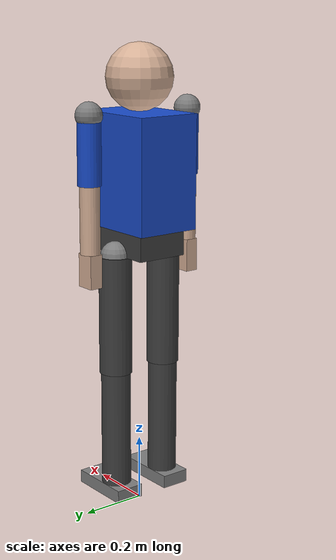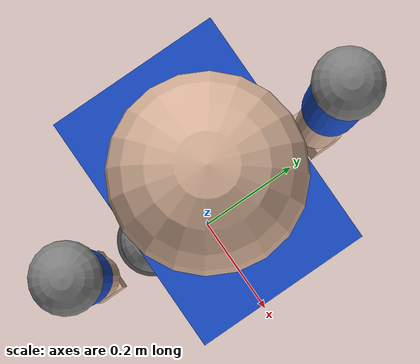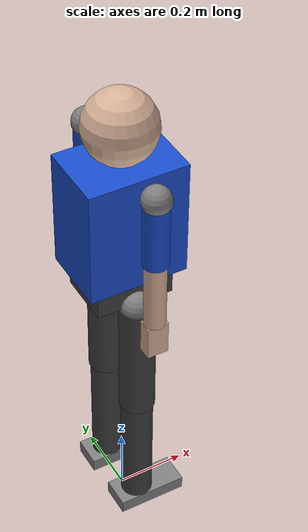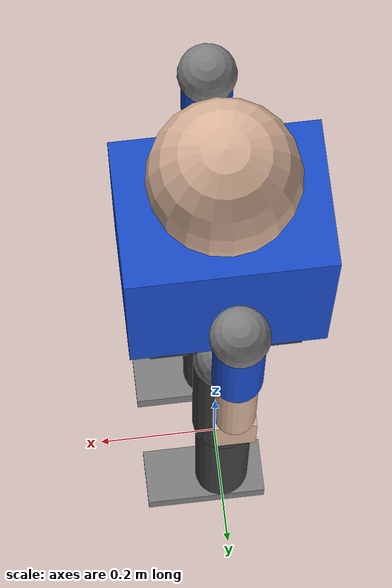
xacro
<?xml version="1.0"?>
<robot name="humanoid_robot" xmlns:xacro="http://www.ros.org/wiki/xacro">
  <xacro:arg name="controllers_file" default="config/controllers.yaml"/>
  <xacro:include filename="properties.xacro"/>
  <xacro:include filename="arm.xacro"/>
  <xacro:include filename="leg.xacro"/>

  <material name="grey"><color rgba="0.5 0.5 0.5 1"/></material>
  <material name="dark_grey"><color rgba="0.25 0.25 0.25 1"/></material>
  <material name="blue"><color rgba="0.1 0.3 0.8 1"/></material>
  <material name="skin"><color rgba="0.85 0.7 0.6 1"/></material>

  <link name="base_link"/>
  <link name="pelvis"><inertial><mass value="3.0"/><xacro:box_inertia mass="3.0" x="0.22" y="0.16" z="0.10"/></inertial><visual><geometry><box size="0.22 0.16 0.10"/></geometry><material name="dark_grey"/></visual><collision><geometry><box size="0.22 0.16 0.10"/></geometry></collision></link>
  <joint name="base_to_pelvis" type="fixed"><parent link="base_link"/><child link="pelvis"/><origin xyz="0 0 0.85"/></joint>

  <link name="torso"><inertial><origin xyz="0 0 0.15"/><mass value="8.0"/><xacro:box_inertia mass="8.0" x="0.28" y="0.20" z="0.34"/></inertial><visual><origin xyz="0 0 0.15"/><geometry><box size="0.28 0.20 0.34"/></geometry><material name="blue"/></visual><collision><origin xyz="0 0 0.15"/><geometry><box size="0.28 0.20 0.34"/></geometry></collision></link>
  <joint name="waist_joint" type="revolute"><parent link="pelvis"/><child link="torso"/><origin xyz="0 0 0.05"/><axis xyz="0 0 1"/><limit lower="-0.78" upper="0.78" effort="50" velocity="2"/><dynamics damping="0.5" friction="0.1"/></joint>

  <link name="head"><inertial><mass value="1.2"/><xacro:sphere_inertia mass="1.2" radius="0.10"/></inertial><visual><geometry><sphere radius="0.10"/></geometry><material name="skin"/></visual><collision><geometry><sphere radius="0.10"/></geometry></collision></link>
  <joint name="neck_joint" type="revolute"><parent link="torso"/><child link="head"/><origin xyz="0 0 0.42"/><axis xyz="0 1 0"/><limit lower="-0.6" upper="0.6" effort="10" velocity="2"/><dynamics damping="0.1" friction="0.02"/></joint>

  <xacro:arm prefix="left" side="1"/>
  <xacro:arm prefix="right" side="-1"/>
  <xacro:leg prefix="left" side="1"/>
  <xacro:leg prefix="right" side="-1"/>

  <!-- Gazebo exposes all actuated URDF joints through position interfaces. -->
  <ros2_control name="HumanoidGazeboSystem" type="system">
    <hardware><plugin>gazebo_ros2_control/GazeboSystem</plugin></hardware>
    <xacro:macro name="position_joint" params="name"><joint name="${name}"><command_interface name="position"><param name="min">-3.14</param><param name="max">3.14</param></command_interface><state_interface name="position"/><state_interface name="velocity"/></joint></xacro:macro>
    <xacro:position_joint name="waist_joint"/><xacro:position_joint name="neck_joint"/>
    <xacro:position_joint name="left_shoulder_pitch"/><xacro:position_joint name="left_shoulder_roll"/><xacro:position_joint name="left_elbow"/>
    <xacro:position_joint name="right_shoulder_pitch"/><xacro:position_joint name="right_shoulder_roll"/><xacro:position_joint name="right_elbow"/>
    <xacro:position_joint name="left_hip_yaw"/><xacro:position_joint name="left_hip_roll"/><xacro:position_joint name="left_hip_pitch"/><xacro:position_joint name="left_knee"/><xacro:position_joint name="left_ankle_pitch"/>
    <xacro:position_joint name="right_hip_yaw"/><xacro:position_joint name="right_hip_roll"/><xacro:position_joint name="right_hip_pitch"/><xacro:position_joint name="right_knee"/><xacro:position_joint name="right_ankle_pitch"/>
  </ros2_control>
  <gazebo><plugin name="gazebo_ros2_control" filename="libgazebo_ros2_control.so"><parameters>$(arg controllers_file)</parameters></plugin></gazebo>

  <gazebo reference="head"><sensor name="head_camera" type="camera"><always_on>true</always_on><update_rate>20</update_rate><camera><horizontal_fov>1.047</horizontal_fov><image><width>640</width><height>480</height><format>R8G8B8</format></image><clip><near>0.05</near><far>15</far></clip></camera><plugin name="head_camera_ros" filename="libgazebo_ros_camera.so"><camera_name>head_camera</camera_name><frame_name>head</frame_name></plugin></sensor></gazebo>
  <gazebo reference="torso"><sensor name="torso_imu" type="imu"><always_on>true</always_on><update_rate>100</update_rate><plugin name="torso_imu_ros" filename="libgazebo_ros_imu_sensor.so"><topic_name>imu/data</topic_name><frame_name>torso</frame_name></plugin></sensor></gazebo>
  <gazebo reference="torso"><sensor name="torso_lidar" type="ray"><always_on>true</always_on><update_rate>10</update_rate><ray><scan><horizontal><samples>360</samples><min_angle>-3.14159</min_angle><max_angle>3.14159</max_angle></horizontal></scan><range><min>0.12</min><max>12.0</max><resolution>0.02</resolution></range></ray><plugin name="torso_lidar_ros" filename="libgazebo_ros_ray_sensor.so"><topic_name>scan</topic_name><frame_name>torso</frame_name></plugin></sensor></gazebo>
</robot>

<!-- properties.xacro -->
<robot xmlns:xacro="http://www.ros.org/wiki/xacro">
  <!-- SI units.  Keeping dimensions here prevents left/right chains drifting apart. -->
  <xacro:property name="arm_length" value="0.20"/>
  <xacro:property name="thigh_length" value="0.36"/>
  <xacro:property name="shin_length" value="0.36"/>
  <xacro:property name="gravity" value="9.81"/>

  <xacro:macro name="box_inertia" params="mass x y z">
    <inertia ixx="${mass * (y*y + z*z) / 12.0}" ixy="0" ixz="0"
             iyy="${mass * (x*x + z*z) / 12.0}" iyz="0"
             izz="${mass * (x*x + y*y) / 12.0}"/>
  </xacro:macro>
  <xacro:macro name="cylinder_inertia" params="mass radius length">
    <inertia ixx="${mass * (3*radius*radius + length*length) / 12.0}" ixy="0" ixz="0"
             iyy="${mass * (3*radius*radius + length*length) / 12.0}" iyz="0"
             izz="${mass * radius*radius / 2.0}"/>
  </xacro:macro>
  <xacro:macro name="sphere_inertia" params="mass radius">
    <inertia ixx="${2*mass*radius*radius/5.0}" ixy="0" ixz="0"
             iyy="${2*mass*radius*radius/5.0}" iyz="0"
             izz="${2*mass*radius*radius/5.0}"/>
  </xacro:macro>
</robot>

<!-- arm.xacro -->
<robot xmlns:xacro="http://www.ros.org/wiki/xacro">
  <xacro:macro name="arm" params="prefix side">
    <link name="${prefix}_shoulder_stub"><inertial><mass value="0.2"/><xacro:sphere_inertia mass="0.2" radius="0.04"/></inertial><visual><geometry><sphere radius="0.04"/></geometry><material name="grey"/></visual><collision><geometry><sphere radius="0.04"/></geometry></collision></link>
    <joint name="${prefix}_shoulder_pitch" type="revolute"><parent link="torso"/><child link="${prefix}_shoulder_stub"/><origin xyz="0 ${side * 0.18} 0.32" rpy="0 0 0"/><axis xyz="0 1 0"/><limit lower="-3.14" upper="1.57" effort="30" velocity="3"/><dynamics damping="0.2" friction="0.05"/></joint>
    <link name="${prefix}_upper_arm"><inertial><origin xyz="0 0 ${-arm_length/2}"/><mass value="1.0"/><xacro:cylinder_inertia mass="1.0" radius="0.035" length="${arm_length}"/></inertial><visual><origin xyz="0 0 ${-arm_length/2}"/><geometry><cylinder radius="0.035" length="${arm_length}"/></geometry><material name="blue"/></visual><collision><origin xyz="0 0 ${-arm_length/2}"/><geometry><cylinder radius="0.035" length="${arm_length}"/></geometry></collision></link>
    <joint name="${prefix}_shoulder_roll" type="revolute"><parent link="${prefix}_shoulder_stub"/><child link="${prefix}_upper_arm"/><axis xyz="1 0 0"/><limit lower="-1.57" upper="1.57" effort="30" velocity="3"/><dynamics damping="0.2" friction="0.05"/></joint>
    <link name="${prefix}_forearm"><inertial><origin xyz="0 0 ${-arm_length/2}"/><mass value="0.7"/><xacro:cylinder_inertia mass="0.7" radius="0.03" length="${arm_length}"/></inertial><visual><origin xyz="0 0 ${-arm_length/2}"/><geometry><cylinder radius="0.03" length="${arm_length}"/></geometry><material name="skin"/></visual><collision><origin xyz="0 0 ${-arm_length/2}"/><geometry><cylinder radius="0.03" length="${arm_length}"/></geometry></collision></link>
    <joint name="${prefix}_elbow" type="revolute"><parent link="${prefix}_upper_arm"/><child link="${prefix}_forearm"/><origin xyz="0 0 ${-arm_length}"/><axis xyz="1 0 0"/><limit lower="0" upper="2.35" effort="20" velocity="3"/><dynamics damping="0.15" friction="0.03"/></joint>
    <link name="${prefix}_hand"><inertial><mass value="0.3"/><xacro:box_inertia mass="0.3" x="0.06" y="0.04" z="0.10"/></inertial><visual><geometry><box size="0.06 0.04 0.10"/></geometry><material name="skin"/></visual><collision><geometry><box size="0.06 0.04 0.10"/></geometry></collision></link>
    <joint name="${prefix}_wrist" type="fixed"><parent link="${prefix}_forearm"/><child link="${prefix}_hand"/><origin xyz="0 0 -0.25"/></joint>
  </xacro:macro>
</robot>

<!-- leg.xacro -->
<robot xmlns:xacro="http://www.ros.org/wiki/xacro">
  <xacro:macro name="leg" params="prefix side">
    <link name="${prefix}_hip_yaw_link"><inertial><mass value="0.3"/><xacro:sphere_inertia mass="0.3" radius="0.045"/></inertial><visual><geometry><sphere radius="0.045"/></geometry><material name="grey"/></visual><collision><geometry><sphere radius="0.045"/></geometry></collision></link>
    <joint name="${prefix}_hip_yaw" type="revolute"><parent link="pelvis"/><child link="${prefix}_hip_yaw_link"/><origin xyz="0 ${side * 0.09} -0.05"/><axis xyz="0 0 1"/><limit lower="-0.78" upper="0.78" effort="40" velocity="2"/><dynamics damping="0.3" friction="0.05"/></joint>
    <link name="${prefix}_hip_roll_link"><inertial><mass value="0.3"/><xacro:sphere_inertia mass="0.3" radius="0.045"/></inertial><visual><geometry><sphere radius="0.045"/></geometry><material name="grey"/></visual><collision><geometry><sphere radius="0.045"/></geometry></collision></link>
    <joint name="${prefix}_hip_roll" type="revolute"><parent link="${prefix}_hip_yaw_link"/><child link="${prefix}_hip_roll_link"/><axis xyz="1 0 0"/><limit lower="-0.5" upper="0.5" effort="40" velocity="2"/><dynamics damping="0.3" friction="0.05"/></joint>
    <link name="${prefix}_thigh"><inertial><origin xyz="0 0 ${-thigh_length/2}"/><mass value="2.0"/><xacro:cylinder_inertia mass="2.0" radius="0.05" length="${thigh_length}"/></inertial><visual><origin xyz="0 0 ${-thigh_length/2}"/><geometry><cylinder radius="0.05" length="${thigh_length}"/></geometry><material name="dark_grey"/></visual><collision><origin xyz="0 0 ${-thigh_length/2}"/><geometry><cylinder radius="0.05" length="${thigh_length}"/></geometry></collision></link>
    <joint name="${prefix}_hip_pitch" type="revolute"><parent link="${prefix}_hip_roll_link"/><child link="${prefix}_thigh"/><axis xyz="0 1 0"/><limit lower="-1.57" upper="1.0" effort="60" velocity="2.5"/><dynamics damping="0.4" friction="0.08"/></joint>
    <link name="${prefix}_shin"><inertial><origin xyz="0 0 ${-shin_length/2}"/><mass value="1.5"/><xacro:cylinder_inertia mass="1.5" radius="0.045" length="${shin_length}"/></inertial><visual><origin xyz="0 0 ${-shin_length/2}"/><geometry><cylinder radius="0.045" length="${shin_length}"/></geometry><material name="dark_grey"/></visual><collision><origin xyz="0 0 ${-shin_length/2}"/><geometry><cylinder radius="0.045" length="${shin_length}"/></geometry></collision></link>
    <joint name="${prefix}_knee" type="revolute"><parent link="${prefix}_thigh"/><child link="${prefix}_shin"/><origin xyz="0 0 ${-thigh_length}"/><axis xyz="0 1 0"/><limit lower="0" upper="2.35" effort="60" velocity="2.5"/><dynamics damping="0.4" friction="0.08"/></joint>
    <link name="${prefix}_foot"><inertial><origin xyz="0.03 0 -0.02"/><mass value="0.4"/><xacro:box_inertia mass="0.4" x="0.20" y="0.09" z="0.04"/></inertial><visual><origin xyz="0.03 0 -0.02"/><geometry><box size="0.20 0.09 0.04"/></geometry><material name="grey"/></visual><collision><origin xyz="0.03 0 -0.02"/><geometry><box size="0.20 0.09 0.04"/></geometry></collision></link>
    <joint name="${prefix}_ankle_pitch" type="revolute"><parent link="${prefix}_shin"/><child link="${prefix}_foot"/><origin xyz="0 0 ${-shin_length}"/><axis xyz="0 1 0"/><limit lower="-0.6" upper="0.6" effort="30" velocity="2.5"/><dynamics damping="0.25" friction="0.05"/></joint>
  </xacro:macro>
</robot>
